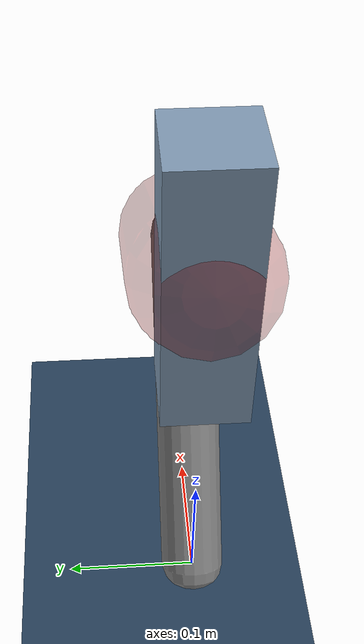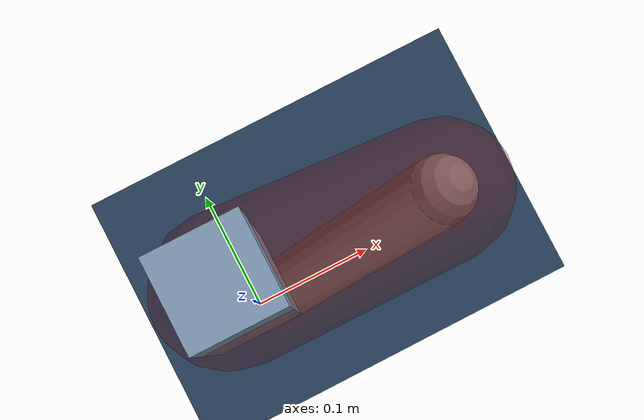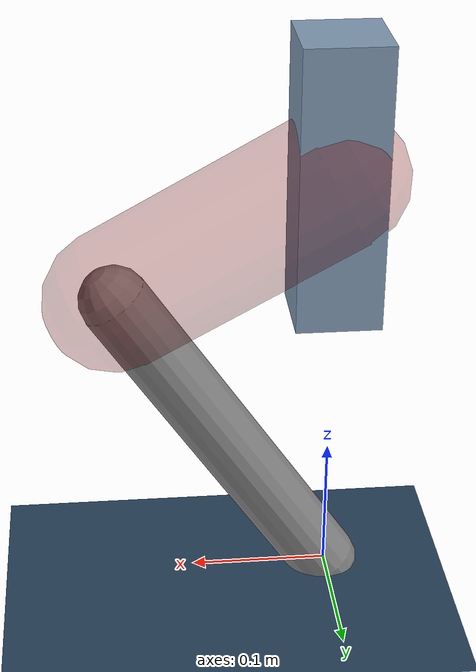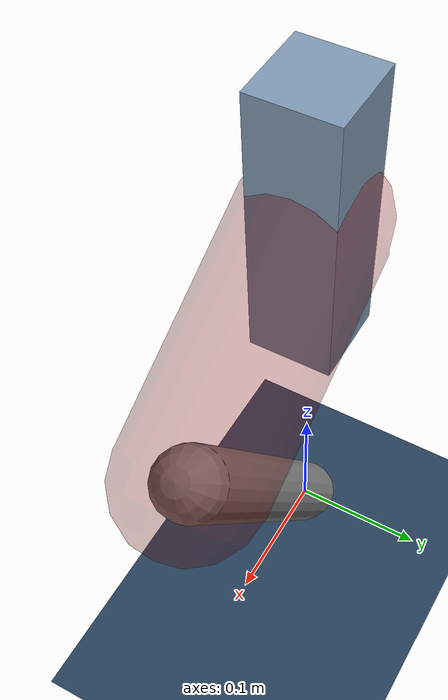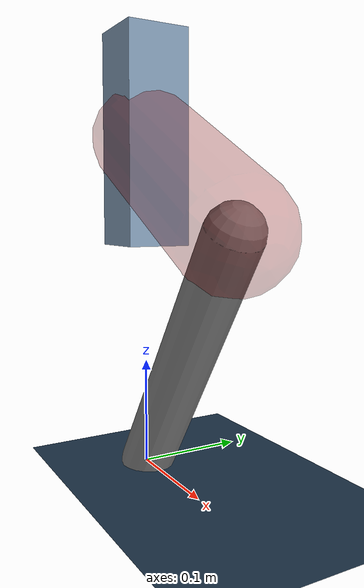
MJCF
<mujoco model="Hopper2D">
	<compiler inertiafromgeom="true" angle="radian" />
	<option timestep="0.001" integrator="implicit" cone="elliptic" solver="Newton" tolerance="1e-10" />

	<default>
		<geom contype="1" conaffinity="1" condim="3" friction="2 0.005 0.0001" solref="0.005 1" />
		<joint limited="true" damping="0.1" />
	</default>

	<asset>
		<texture name="skybox" type="skybox" builtin="gradient" rgb1=".4 .6 .8" rgb2="0 0 0" width="800" height="800" />
		<texture name="grid" type="2d" builtin="checker" rgb1=".1 .2 .3" rgb2=".2 .3 .4" width="300" height="300" mark="edge" markrgb=".2 .3 .4" />
		<material name="ground" texture="grid" texrepeat="1 1" texuniform="true" reflectance="0.1" />
		<material name="leg" rgba="0.5 0.6 0.7 1" />
	</asset>

	<worldbody>

		<geom name="floor" type="plane" size="5 5 0.25" material="ground" />

		<light directional="false" diffuse="0.8 0.8 0.8" specular="0.3 0.3 0.3" pos="0 0 2" dir="0 0 -1" />
		<light mode="targetbodycom" target="base" directional="false" diffuse="0.8 0.8 0.8" specular="0.3 0.3 0.3" pos="0 0 2" dir="0 0 -1" />

		<camera name="fixed" pos="0 -2 1" xyaxes="1 0 0 0 0 1" />
		<camera name="tracking" mode="trackcom" pos="0 -3 1" />

		<body name="root" pos="0 0 0.31263307657233985">
			<joint name="slide_x" type="slide" axis="1 0 0" range="-100 100" />
			<joint name="slide_z" type="slide" axis="0 0 1" range="0 10" />

			<body name="base" pos="0 0 0">
				<geom name="torso" type="box" size="0.03 0.03 0.1" mass="2.698" material="leg" />

				<body name="link1" pos="0 0 0" euler="0 0.506851227907638 0">
					<joint type="hinge" axis="0 -1 0" pos="0 0 0" name="hinge1" limited="true" range="-3.14 3.14" stiffness="0" damping="0.1" />
					<geom name="thigh" type="capsule" fromto="0 0 0 0.17444681388590755 0 0" size="0.05" rgba="0.5 0 0 0.3" mass="0.6670723533261782" />

					<body name="link2" pos="0.17444681388590755 0 0" euler="0 1.6536069801826372 0">
						<joint type="hinge" axis="0 -1 0" pos="0 0 0" name="hinge2" limited="true" range="-3.14 3.14" stiffness="0" damping="0.1" />
						<geom name="shank" type="capsule" fromto="0 0 0 0.274267886822592 0 0" size="0.025" mass="0.4624143094580736" />

					</body>
				</body>
			</body>
		</body>
	</worldbody>

	<actuator>
		<motor name="torque1" joint="hinge1" ctrlrange="-119.33848797745988 119.33848797745988" ctrllimited="true" gear="1" />
		<motor name="torque2" joint="hinge2" ctrlrange="-81.49093372447133 81.49093372447133" ctrllimited="true" gear="1" />
	</actuator>
</mujoco>
